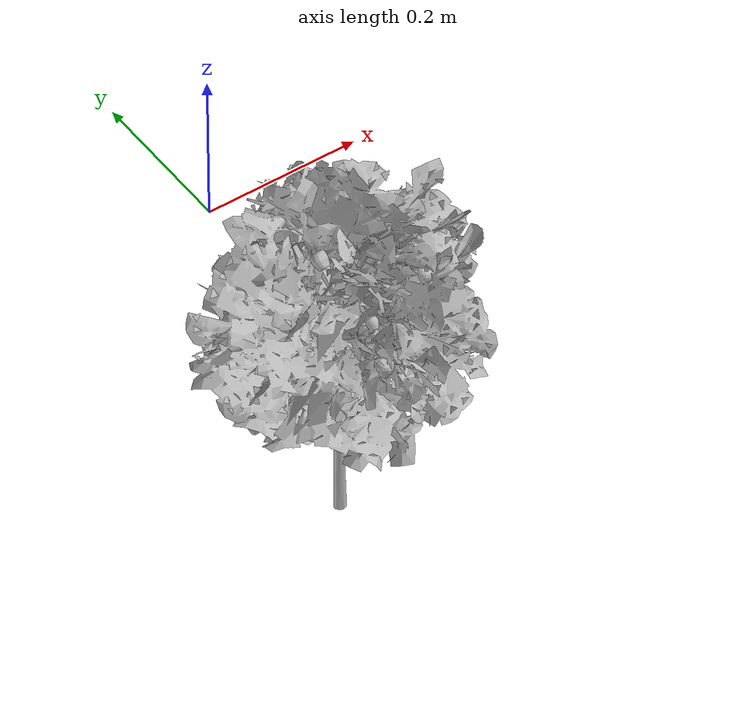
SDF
<?xml version="1.0" ?>
<sdf version="1.5">
  <model name="apple_tree_fruit">
     <static>true</static>
    <pose frame=''>0 0 0 1.57079 0 0</pose>
    <link name="link">
      <pose frame=''>0 0 0 0 0 0</pose>
      <collision name="collision">
        <geometry>
          <mesh>
            <scale>1 1 1</scale>
            <uri>model://apple_tree_fruit/meshes/apple_tree_fruit.obj</uri>
          </mesh>
        </geometry>
      </collision>
      <visual name="visual">
        <geometry>
          <mesh>

            <scale>1 1 1</scale>
            <uri>model://apple_tree_fruit/meshes/apple_tree_fruit.obj</uri>
          </mesh>
        </geometry>
      </visual>
    </link>
  </model>
</sdf>
